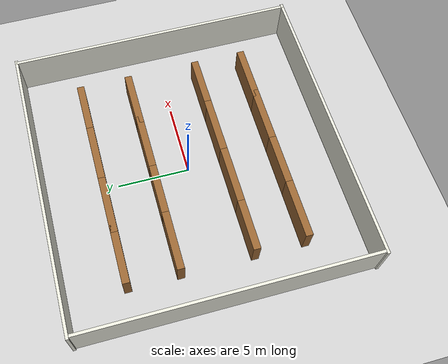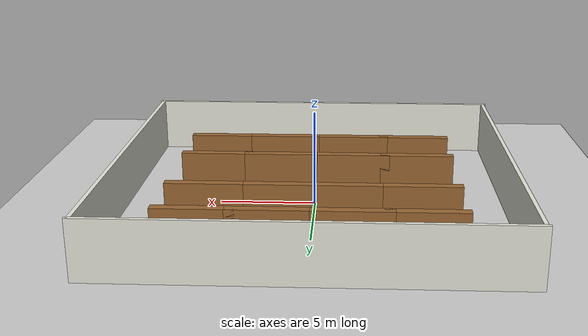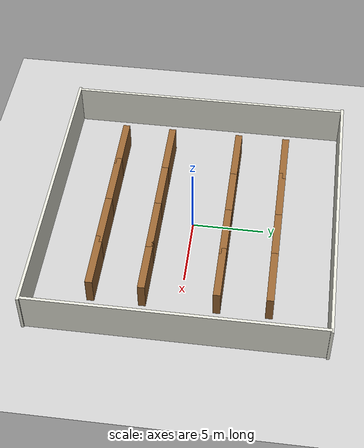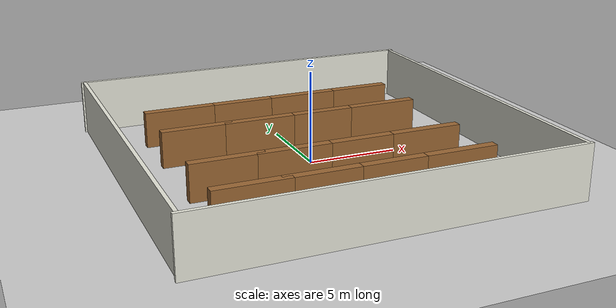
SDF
<?xml version="1.0" ?>
<sdf version="1.9">
  <world name="warehouse">

    <!-- Physics: high frequency for mecanum wheel accuracy -->
    <physics name="1ms" type="ode">
      <max_step_size>0.001</max_step_size>
      <real_time_factor>1.0</real_time_factor>
      <real_time_update_rate>1000</real_time_update_rate>
    </physics>

    <!-- System plugins -->
    <plugin filename="gz-sim-physics-system" name="gz::sim::systems::Physics"/>
    <plugin filename="gz-sim-sensors-system" name="gz::sim::systems::Sensors">
      <render_engine>ogre</render_engine>
    </plugin>
    <plugin filename="gz-sim-user-commands-system" name="gz::sim::systems::UserCommands"/>
    <plugin filename="gz-sim-scene-broadcaster-system" name="gz::sim::systems::SceneBroadcaster"/>

    <!-- Lighting -->
    <light type="directional" name="sun">
      <cast_shadows>true</cast_shadows>
      <pose>0 0 10 0 0 0</pose>
      <diffuse>0.8 0.8 0.8 1</diffuse>
      <specular>0.2 0.2 0.2 1</specular>
      <attenuation>
        <range>100</range>
        <constant>0.9</constant>
        <linear>0.01</linear>
        <quadratic>0.001</quadratic>
      </attenuation>
      <direction>-0.5 0.5 -0.9</direction>
    </light>

    <scene>
      <ambient>0.4 0.4 0.4 1</ambient>
      <background>0.7 0.7 0.7 1</background>
      <shadows>true</shadows>
    </scene>

    <!-- Ground plane with mecanum-friendly friction -->
    <model name="ground_plane">
      <static>true</static>
      <link name="link">
        <collision name="collision">
          <geometry>
            <plane>
              <normal>0 0 1</normal>
              <size>50 50</size>
            </plane>
          </geometry>
          <surface>
            <friction>
              <ode>
                <mu>0.8</mu>
                <mu2>0.02</mu2>
                <fdir1>0 0 0</fdir1>
                <slip1>0.0</slip1>
                <slip2>0.05</slip2>
              </ode>
            </friction>
            <contact>
              <ode>
                <kp>1e8</kp>
                <kd>100</kd>
              </ode>
            </contact>
          </surface>
        </collision>
        <visual name="visual">
          <geometry>
            <plane>
              <normal>0 0 1</normal>
              <size>50 50</size>
            </plane>
          </geometry>
          <material>
            <ambient>0.8 0.8 0.8 1</ambient>
            <diffuse>0.8 0.8 0.8 1</diffuse>
            <specular>0.2 0.2 0.2 1</specular>
          </material>
        </visual>
      </link>
    </model>

    <!-- ========== 20x20m Warehouse Walls ========== -->
    <!-- Wall height: 3m, thickness: 0.2m -->

    <!-- North wall (y=+10) -->
    <model name="wall_north">
      <static>true</static>
      <link name="link">
        <collision name="collision">
          <geometry><box><size>20.4 0.2 3</size></box></geometry>
          <pose>0 0 1.5 0 0 0</pose>
        </collision>
        <visual name="visual">
          <geometry><box><size>20.4 0.2 3</size></box></geometry>
          <pose>0 0 1.5 0 0 0</pose>
          <material><diffuse>0.9 0.9 0.85 1</diffuse></material>
        </visual>
      </link>
      <pose>0 10 0 0 0 0</pose>
    </model>

    <!-- South wall (y=-10) -->
    <model name="wall_south">
      <static>true</static>
      <link name="link">
        <collision name="collision">
          <geometry><box><size>20.4 0.2 3</size></box></geometry>
          <pose>0 0 1.5 0 0 0</pose>
        </collision>
        <visual name="visual">
          <geometry><box><size>20.4 0.2 3</size></box></geometry>
          <pose>0 0 1.5 0 0 0</pose>
          <material><diffuse>0.9 0.9 0.85 1</diffuse></material>
        </visual>
      </link>
      <pose>0 -10 0 0 0 0</pose>
    </model>

    <!-- East wall (x=+10) -->
    <model name="wall_east">
      <static>true</static>
      <link name="link">
        <collision name="collision">
          <geometry><box><size>0.2 20 3</size></box></geometry>
          <pose>0 0 1.5 0 0 0</pose>
        </collision>
        <visual name="visual">
          <geometry><box><size>0.2 20 3</size></box></geometry>
          <pose>0 0 1.5 0 0 0</pose>
          <material><diffuse>0.9 0.9 0.85 1</diffuse></material>
        </visual>
      </link>
      <pose>10 0 0 0 0 0</pose>
    </model>

    <!-- West wall (x=-10) -->
    <model name="wall_west">
      <static>true</static>
      <link name="link">
        <collision name="collision">
          <geometry><box><size>0.2 20 3</size></box></geometry>
          <pose>0 0 1.5 0 0 0</pose>
        </collision>
        <visual name="visual">
          <geometry><box><size>0.2 20 3</size></box></geometry>
          <pose>0 0 1.5 0 0 0</pose>
          <material><diffuse>0.9 0.9 0.85 1</diffuse></material>
        </visual>
      </link>
      <pose>-10 0 0 0 0 0</pose>
    </model>

    <!-- ========== Shelving Units ========== -->
    <!-- 4 rows of shelves creating 3 aisles -->
    <!-- Each shelf: 4.0m long x 0.5m wide x 2.0m tall -->

    <!-- Row 1: x=-5.5, two shelves with gap -->
    <model name="shelf_r1a">
      <static>true</static>
      <link name="link">
        <collision name="collision">
          <geometry><box><size>4.0 0.5 2.0</size></box></geometry>
          <pose>0 0 1.0 0 0 0</pose>
        </collision>
        <visual name="visual">
          <geometry><box><size>4.0 0.5 2.0</size></box></geometry>
          <pose>0 0 1.0 0 0 0</pose>
          <material><diffuse>0.6 0.4 0.2 1</diffuse></material>
        </visual>
      </link>
      <pose>-5.5 6.0 0 0 0 0</pose>
    </model>

    <model name="shelf_r1b">
      <static>true</static>
      <link name="link">
        <collision name="collision">
          <geometry><box><size>4.0 0.5 2.0</size></box></geometry>
          <pose>0 0 1.0 0 0 0</pose>
        </collision>
        <visual name="visual">
          <geometry><box><size>4.0 0.5 2.0</size></box></geometry>
          <pose>0 0 1.0 0 0 0</pose>
          <material><diffuse>0.6 0.4 0.2 1</diffuse></material>
        </visual>
      </link>
      <pose>-5.5 2.5 0 0 0 0</pose>
    </model>

    <!-- Row 2: x=-2.0 -->
    <model name="shelf_r2a">
      <static>true</static>
      <link name="link">
        <collision name="collision">
          <geometry><box><size>4.0 0.5 2.0</size></box></geometry>
          <pose>0 0 1.0 0 0 0</pose>
        </collision>
        <visual name="visual">
          <geometry><box><size>4.0 0.5 2.0</size></box></geometry>
          <pose>0 0 1.0 0 0 0</pose>
          <material><diffuse>0.6 0.4 0.2 1</diffuse></material>
        </visual>
      </link>
      <pose>-2.0 6.0 0 0 0 0</pose>
    </model>

    <model name="shelf_r2b">
      <static>true</static>
      <link name="link">
        <collision name="collision">
          <geometry><box><size>4.0 0.5 2.0</size></box></geometry>
          <pose>0 0 1.0 0 0 0</pose>
        </collision>
        <visual name="visual">
          <geometry><box><size>4.0 0.5 2.0</size></box></geometry>
          <pose>0 0 1.0 0 0 0</pose>
          <material><diffuse>0.6 0.4 0.2 1</diffuse></material>
        </visual>
      </link>
      <pose>-2.0 2.5 0 0 0 0</pose>
    </model>

    <!-- Row 3: x=+2.0 -->
    <model name="shelf_r3a">
      <static>true</static>
      <link name="link">
        <collision name="collision">
          <geometry><box><size>4.0 0.5 2.0</size></box></geometry>
          <pose>0 0 1.0 0 0 0</pose>
        </collision>
        <visual name="visual">
          <geometry><box><size>4.0 0.5 2.0</size></box></geometry>
          <pose>0 0 1.0 0 0 0</pose>
          <material><diffuse>0.6 0.4 0.2 1</diffuse></material>
        </visual>
      </link>
      <pose>2.0 6.0 0 0 0 0</pose>
    </model>

    <model name="shelf_r3b">
      <static>true</static>
      <link name="link">
        <collision name="collision">
          <geometry><box><size>4.0 0.5 2.0</size></box></geometry>
          <pose>0 0 1.0 0 0 0</pose>
        </collision>
        <visual name="visual">
          <geometry><box><size>4.0 0.5 2.0</size></box></geometry>
          <pose>0 0 1.0 0 0 0</pose>
          <material><diffuse>0.6 0.4 0.2 1</diffuse></material>
        </visual>
      </link>
      <pose>2.0 2.5 0 0 0 0</pose>
    </model>

    <!-- Row 4: x=+5.5 -->
    <model name="shelf_r4a">
      <static>true</static>
      <link name="link">
        <collision name="collision">
          <geometry><box><size>4.0 0.5 2.0</size></box></geometry>
          <pose>0 0 1.0 0 0 0</pose>
        </collision>
        <visual name="visual">
          <geometry><box><size>4.0 0.5 2.0</size></box></geometry>
          <pose>0 0 1.0 0 0 0</pose>
          <material><diffuse>0.6 0.4 0.2 1</diffuse></material>
        </visual>
      </link>
      <pose>5.5 6.0 0 0 0 0</pose>
    </model>

    <model name="shelf_r4b">
      <static>true</static>
      <link name="link">
        <collision name="collision">
          <geometry><box><size>4.0 0.5 2.0</size></box></geometry>
          <pose>0 0 1.0 0 0 0</pose>
        </collision>
        <visual name="visual">
          <geometry><box><size>4.0 0.5 2.0</size></box></geometry>
          <pose>0 0 1.0 0 0 0</pose>
          <material><diffuse>0.6 0.4 0.2 1</diffuse></material>
        </visual>
      </link>
      <pose>5.5 2.5 0 0 0 0</pose>
    </model>

    <!-- Bottom shelves (mirror, negative y) -->
    <model name="shelf_r1c">
      <static>true</static>
      <link name="link">
        <collision name="collision">
          <geometry><box><size>4.0 0.5 2.0</size></box></geometry>
          <pose>0 0 1.0 0 0 0</pose>
        </collision>
        <visual name="visual">
          <geometry><box><size>4.0 0.5 2.0</size></box></geometry>
          <pose>0 0 1.0 0 0 0</pose>
          <material><diffuse>0.6 0.4 0.2 1</diffuse></material>
        </visual>
      </link>
      <pose>-5.5 -6.0 0 0 0 0</pose>
    </model>

    <model name="shelf_r1d">
      <static>true</static>
      <link name="link">
        <collision name="collision">
          <geometry><box><size>4.0 0.5 2.0</size></box></geometry>
          <pose>0 0 1.0 0 0 0</pose>
        </collision>
        <visual name="visual">
          <geometry><box><size>4.0 0.5 2.0</size></box></geometry>
          <pose>0 0 1.0 0 0 0</pose>
          <material><diffuse>0.6 0.4 0.2 1</diffuse></material>
        </visual>
      </link>
      <pose>-5.5 -2.5 0 0 0 0</pose>
    </model>

    <model name="shelf_r2c">
      <static>true</static>
      <link name="link">
        <collision name="collision">
          <geometry><box><size>4.0 0.5 2.0</size></box></geometry>
          <pose>0 0 1.0 0 0 0</pose>
        </collision>
        <visual name="visual">
          <geometry><box><size>4.0 0.5 2.0</size></box></geometry>
          <pose>0 0 1.0 0 0 0</pose>
          <material><diffuse>0.6 0.4 0.2 1</diffuse></material>
        </visual>
      </link>
      <pose>-2.0 -6.0 0 0 0 0</pose>
    </model>

    <model name="shelf_r2d">
      <static>true</static>
      <link name="link">
        <collision name="collision">
          <geometry><box><size>4.0 0.5 2.0</size></box></geometry>
          <pose>0 0 1.0 0 0 0</pose>
        </collision>
        <visual name="visual">
          <geometry><box><size>4.0 0.5 2.0</size></box></geometry>
          <pose>0 0 1.0 0 0 0</pose>
          <material><diffuse>0.6 0.4 0.2 1</diffuse></material>
        </visual>
      </link>
      <pose>-2.0 -2.5 0 0 0 0</pose>
    </model>

    <model name="shelf_r3c">
      <static>true</static>
      <link name="link">
        <collision name="collision">
          <geometry><box><size>4.0 0.5 2.0</size></box></geometry>
          <pose>0 0 1.0 0 0 0</pose>
        </collision>
        <visual name="visual">
          <geometry><box><size>4.0 0.5 2.0</size></box></geometry>
          <pose>0 0 1.0 0 0 0</pose>
          <material><diffuse>0.6 0.4 0.2 1</diffuse></material>
        </visual>
      </link>
      <pose>2.0 -6.0 0 0 0 0</pose>
    </model>

    <model name="shelf_r3d">
      <static>true</static>
      <link name="link">
        <collision name="collision">
          <geometry><box><size>4.0 0.5 2.0</size></box></geometry>
          <pose>0 0 1.0 0 0 0</pose>
        </collision>
        <visual name="visual">
          <geometry><box><size>4.0 0.5 2.0</size></box></geometry>
          <pose>0 0 1.0 0 0 0</pose>
          <material><diffuse>0.6 0.4 0.2 1</diffuse></material>
        </visual>
      </link>
      <pose>2.0 -2.5 0 0 0 0</pose>
    </model>

    <model name="shelf_r4c">
      <static>true</static>
      <link name="link">
        <collision name="collision">
          <geometry><box><size>4.0 0.5 2.0</size></box></geometry>
          <pose>0 0 1.0 0 0 0</pose>
        </collision>
        <visual name="visual">
          <geometry><box><size>4.0 0.5 2.0</size></box></geometry>
          <pose>0 0 1.0 0 0 0</pose>
          <material><diffuse>0.6 0.4 0.2 1</diffuse></material>
        </visual>
      </link>
      <pose>5.5 -6.0 0 0 0 0</pose>
    </model>

    <model name="shelf_r4d">
      <static>true</static>
      <link name="link">
        <collision name="collision">
          <geometry><box><size>4.0 0.5 2.0</size></box></geometry>
          <pose>0 0 1.0 0 0 0</pose>
        </collision>
        <visual name="visual">
          <geometry><box><size>4.0 0.5 2.0</size></box></geometry>
          <pose>0 0 1.0 0 0 0</pose>
          <material><diffuse>0.6 0.4 0.2 1</diffuse></material>
        </visual>
      </link>
      <pose>5.5 -2.5 0 0 0 0</pose>
    </model>

    <!-- Include the AGV robot via spawn node (not here) -->

  </world>
</sdf>
